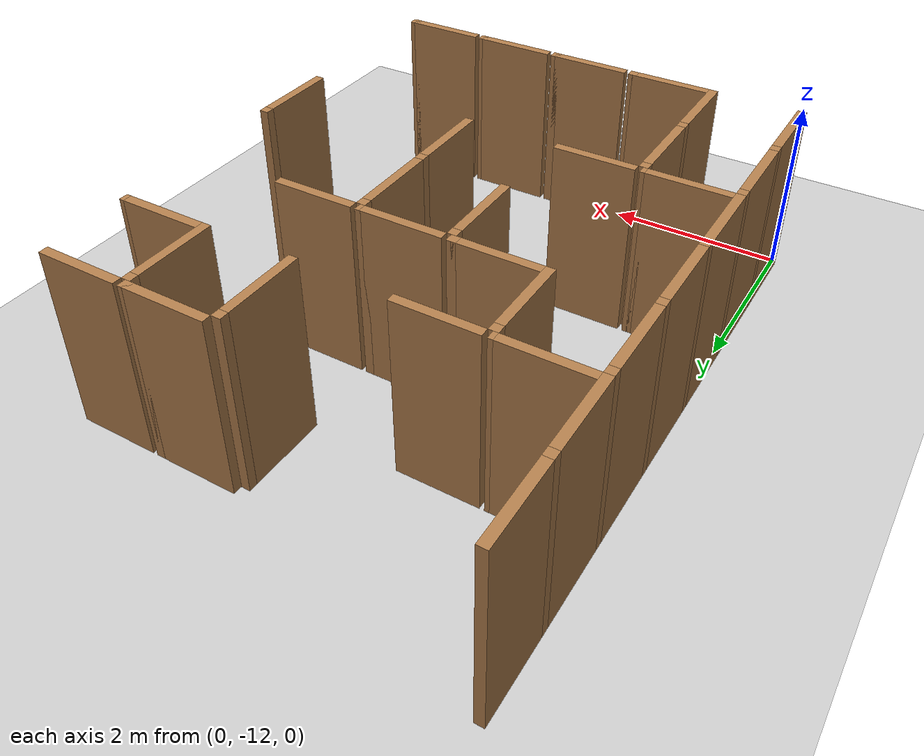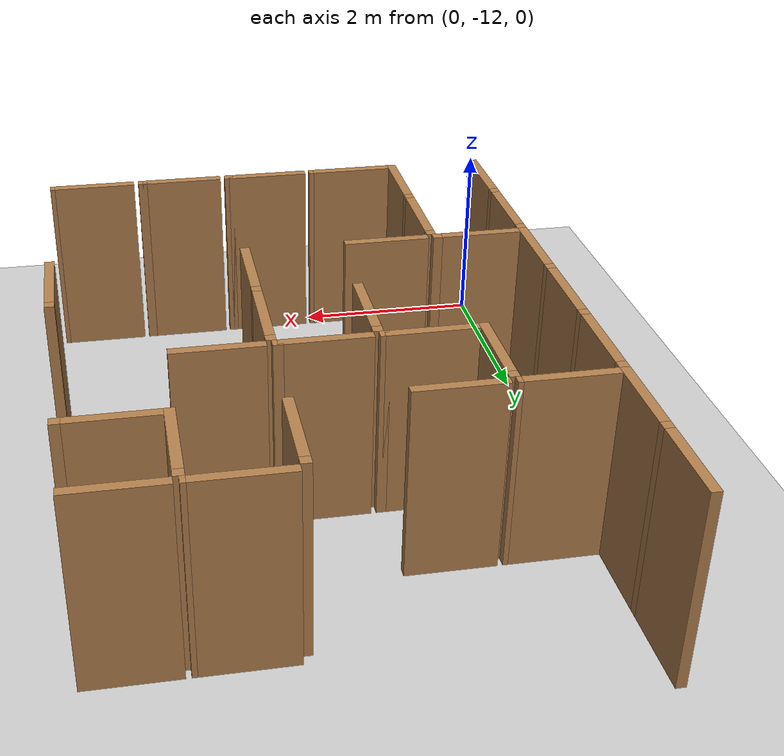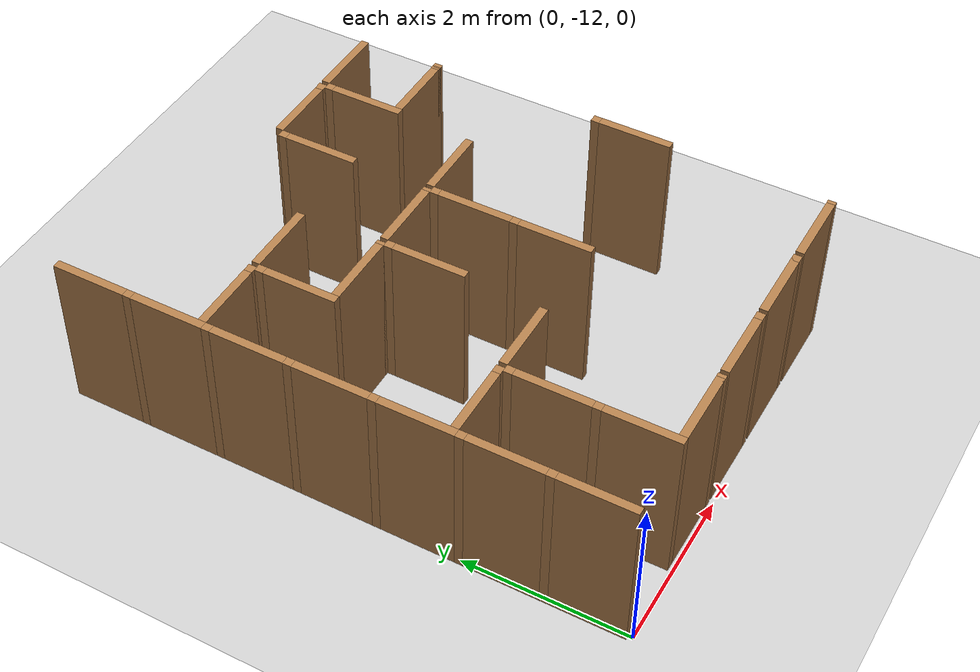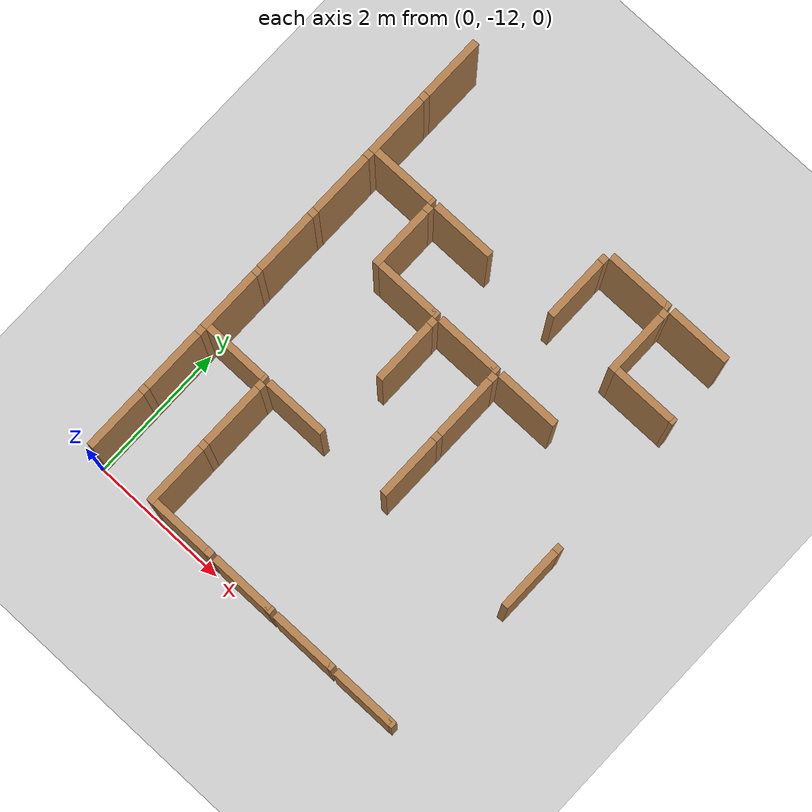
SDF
<sdf version="1.6">
 <world name="default">
  <include><uri>model://sun</uri></include>
  <model name="ground_plane">
   <static>true</static>
   <link name="link">
    <collision name="collision"><geometry><plane><size>12.0 12.0</size></plane></geometry></collision>
    <visual name="visual">
     <cast_shadows>false</cast_shadows>
     <geometry><plane><size>12.0 12.0</size></plane></geometry>
     <material>
      <script><uri>file://media/materials/scripts/gazebo.material</uri><name>Gazebo/Grey</name></script>
     </material>
    </visual>
   </link>
   <pose>6.0 -6.0 0 0 0 0</pose>
  </model>
  <model name="vwall_5_0">
   <pose>0.0 -5.5 1.0 0 0 0</pose>
   <link name="link">
    <collision name="collision"><geometry><box><size>0.1 0.9 2</size></box></geometry></collision>
    <visual name="visual">
     <geometry><box><size>0.1 0.9 2</size></box></geometry>
     <material>
      <script><uri>file://media/materials/scripts/gazebo.material</uri><name>Gazebo/Wood</name></script>
     </material>
    </visual>
   </link>
  </model>
  <model name="vwall_6_0">
   <pose>0.0 -6.5 1.0 0 0 0</pose>
   <link name="link">
    <collision name="collision"><geometry><box><size>0.1 0.9 2</size></box></geometry></collision>
    <visual name="visual">
     <geometry><box><size>0.1 0.9 2</size></box></geometry>
     <material>
      <script><uri>file://media/materials/scripts/gazebo.material</uri><name>Gazebo/Wood</name></script>
     </material>
    </visual>
   </link>
  </model>
  <model name="joint_0.0_-6.0">
   <pose>0.0 -6.0 1.0 0 0 0</pose>
   <link name="link">
    <collision name="collision"><geometry><box><size>0.1 0.1 2</size></box></geometry></collision>
    <visual name="visual">
     <geometry><box><size>0.1 0.1 2</size></box></geometry>
     <material>
      <script><uri>file://media/materials/scripts/gazebo.material</uri><name>Gazebo/Wood</name></script>
     </material>
    </visual>
   </link>
  </model>
  <model name="vwall_6_3">
   <pose>3.0 -6.5 1.0 0 0 0</pose>
   <link name="link">
    <collision name="collision"><geometry><box><size>0.1 0.9 2</size></box></geometry></collision>
    <visual name="visual">
     <geometry><box><size>0.1 0.9 2</size></box></geometry>
     <material>
      <script><uri>file://media/materials/scripts/gazebo.material</uri><name>Gazebo/Wood</name></script>
     </material>
    </visual>
   </link>
  </model>
  <model name="joint_3.0_-6.0">
   <pose>3.0 -6.0 1.0 0 0 0</pose>
   <link name="link">
    <collision name="collision"><geometry><box><size>0.1 0.1 2</size></box></geometry></collision>
    <visual name="visual">
     <geometry><box><size>0.1 0.1 2</size></box></geometry>
     <material>
      <script><uri>file://media/materials/scripts/gazebo.material</uri><name>Gazebo/Wood</name></script>
     </material>
    </visual>
   </link>
  </model>
  <model name="vwall_6_4">
   <pose>4.0 -6.5 1.0 0 0 0</pose>
   <link name="link">
    <collision name="collision"><geometry><box><size>0.1 0.9 2</size></box></geometry></collision>
    <visual name="visual">
     <geometry><box><size>0.1 0.9 2</size></box></geometry>
     <material>
      <script><uri>file://media/materials/scripts/gazebo.material</uri><name>Gazebo/Wood</name></script>
     </material>
    </visual>
   </link>
  </model>
  <model name="joint_4.0_-6.0">
   <pose>4.0 -6.0 1.0 0 0 0</pose>
   <link name="link">
    <collision name="collision"><geometry><box><size>0.1 0.1 2</size></box></geometry></collision>
    <visual name="visual">
     <geometry><box><size>0.1 0.1 2</size></box></geometry>
     <material>
      <script><uri>file://media/materials/scripts/gazebo.material</uri><name>Gazebo/Wood</name></script>
     </material>
    </visual>
   </link>
  </model>
  <model name="vwall_7_0">
   <pose>0.0 -7.5 1.0 0 0 0</pose>
   <link name="link">
    <collision name="collision"><geometry><box><size>0.1 0.9 2</size></box></geometry></collision>
    <visual name="visual">
     <geometry><box><size>0.1 0.9 2</size></box></geometry>
     <material>
      <script><uri>file://media/materials/scripts/gazebo.material</uri><name>Gazebo/Wood</name></script>
     </material>
    </visual>
   </link>
  </model>
  <model name="joint_0.0_-7.0">
   <pose>0.0 -7.0 1.0 0 0 0</pose>
   <link name="link">
    <collision name="collision"><geometry><box><size>0.1 0.1 2</size></box></geometry></collision>
    <visual name="visual">
     <geometry><box><size>0.1 0.1 2</size></box></geometry>
     <material>
      <script><uri>file://media/materials/scripts/gazebo.material</uri><name>Gazebo/Wood</name></script>
     </material>
    </visual>
   </link>
  </model>
  <model name="vwall_7_1">
   <pose>1.0 -7.5 1.0 0 0 0</pose>
   <link name="link">
    <collision name="collision"><geometry><box><size>0.1 0.9 2</size></box></geometry></collision>
    <visual name="visual">
     <geometry><box><size>0.1 0.9 2</size></box></geometry>
     <material>
      <script><uri>file://media/materials/scripts/gazebo.material</uri><name>Gazebo/Wood</name></script>
     </material>
    </visual>
   </link>
  </model>
  <model name="joint_1.0_-7.0">
   <pose>1.0 -7.0 1.0 0 0 0</pose>
   <link name="link">
    <collision name="collision"><geometry><box><size>0.1 0.1 2</size></box></geometry></collision>
    <visual name="visual">
     <geometry><box><size>0.1 0.1 2</size></box></geometry>
     <material>
      <script><uri>file://media/materials/scripts/gazebo.material</uri><name>Gazebo/Wood</name></script>
     </material>
    </visual>
   </link>
  </model>
  <model name="vwall_8_0">
   <pose>0.0 -8.5 1.0 0 0 0</pose>
   <link name="link">
    <collision name="collision"><geometry><box><size>0.1 0.9 2</size></box></geometry></collision>
    <visual name="visual">
     <geometry><box><size>0.1 0.9 2</size></box></geometry>
     <material>
      <script><uri>file://media/materials/scripts/gazebo.material</uri><name>Gazebo/Wood</name></script>
     </material>
    </visual>
   </link>
  </model>
  <model name="joint_0.0_-8.0">
   <pose>0.0 -8.0 1.0 0 0 0</pose>
   <link name="link">
    <collision name="collision"><geometry><box><size>0.1 0.1 2</size></box></geometry></collision>
    <visual name="visual">
     <geometry><box><size>0.1 0.1 2</size></box></geometry>
     <material>
      <script><uri>file://media/materials/scripts/gazebo.material</uri><name>Gazebo/Wood</name></script>
     </material>
    </visual>
   </link>
  </model>
  <model name="vwall_8_2">
   <pose>2.0 -8.5 1.0 0 0 0</pose>
   <link name="link">
    <collision name="collision"><geometry><box><size>0.1 0.9 2</size></box></geometry></collision>
    <visual name="visual">
     <geometry><box><size>0.1 0.9 2</size></box></geometry>
     <material>
      <script><uri>file://media/materials/scripts/gazebo.material</uri><name>Gazebo/Wood</name></script>
     </material>
    </visual>
   </link>
  </model>
  <model name="joint_2.0_-8.0">
   <pose>2.0 -8.0 1.0 0 0 0</pose>
   <link name="link">
    <collision name="collision"><geometry><box><size>0.1 0.1 2</size></box></geometry></collision>
    <visual name="visual">
     <geometry><box><size>0.1 0.1 2</size></box></geometry>
     <material>
      <script><uri>file://media/materials/scripts/gazebo.material</uri><name>Gazebo/Wood</name></script>
     </material>
    </visual>
   </link>
  </model>
  <model name="vwall_8_3">
   <pose>3.0 -8.5 1.0 0 0 0</pose>
   <link name="link">
    <collision name="collision"><geometry><box><size>0.1 0.9 2</size></box></geometry></collision>
    <visual name="visual">
     <geometry><box><size>0.1 0.9 2</size></box></geometry>
     <material>
      <script><uri>file://media/materials/scripts/gazebo.material</uri><name>Gazebo/Wood</name></script>
     </material>
    </visual>
   </link>
  </model>
  <model name="joint_3.0_-8.0">
   <pose>3.0 -8.0 1.0 0 0 0</pose>
   <link name="link">
    <collision name="collision"><geometry><box><size>0.1 0.1 2</size></box></geometry></collision>
    <visual name="visual">
     <geometry><box><size>0.1 0.1 2</size></box></geometry>
     <material>
      <script><uri>file://media/materials/scripts/gazebo.material</uri><name>Gazebo/Wood</name></script>
     </material>
    </visual>
   </link>
  </model>
  <model name="vwall_9_0">
   <pose>0.0 -9.5 1.0 0 0 0</pose>
   <link name="link">
    <collision name="collision"><geometry><box><size>0.1 0.9 2</size></box></geometry></collision>
    <visual name="visual">
     <geometry><box><size>0.1 0.9 2</size></box></geometry>
     <material>
      <script><uri>file://media/materials/scripts/gazebo.material</uri><name>Gazebo/Wood</name></script>
     </material>
    </visual>
   </link>
  </model>
  <model name="joint_0.0_-9.0">
   <pose>0.0 -9.0 1.0 0 0 0</pose>
   <link name="link">
    <collision name="collision"><geometry><box><size>0.1 0.1 2</size></box></geometry></collision>
    <visual name="visual">
     <geometry><box><size>0.1 0.1 2</size></box></geometry>
     <material>
      <script><uri>file://media/materials/scripts/gazebo.material</uri><name>Gazebo/Wood</name></script>
     </material>
    </visual>
   </link>
  </model>
  <model name="vwall_9_3">
   <pose>3.0 -9.5 1.0 0 0 0</pose>
   <link name="link">
    <collision name="collision"><geometry><box><size>0.1 0.9 2</size></box></geometry></collision>
    <visual name="visual">
     <geometry><box><size>0.1 0.9 2</size></box></geometry>
     <material>
      <script><uri>file://media/materials/scripts/gazebo.material</uri><name>Gazebo/Wood</name></script>
     </material>
    </visual>
   </link>
  </model>
  <model name="joint_3.0_-9.0">
   <pose>3.0 -9.0 1.0 0 0 0</pose>
   <link name="link">
    <collision name="collision"><geometry><box><size>0.1 0.1 2</size></box></geometry></collision>
    <visual name="visual">
     <geometry><box><size>0.1 0.1 2</size></box></geometry>
     <material>
      <script><uri>file://media/materials/scripts/gazebo.material</uri><name>Gazebo/Wood</name></script>
     </material>
    </visual>
   </link>
  </model>
  <model name="vwall_9_5">
   <pose>5.0 -9.5 1.0 0 0 0</pose>
   <link name="link">
    <collision name="collision"><geometry><box><size>0.1 0.9 2</size></box></geometry></collision>
    <visual name="visual">
     <geometry><box><size>0.1 0.9 2</size></box></geometry>
     <material>
      <script><uri>file://media/materials/scripts/gazebo.material</uri><name>Gazebo/Wood</name></script>
     </material>
    </visual>
   </link>
  </model>
  <model name="joint_5.0_-9.0">
   <pose>5.0 -9.0 1.0 0 0 0</pose>
   <link name="link">
    <collision name="collision"><geometry><box><size>0.1 0.1 2</size></box></geometry></collision>
    <visual name="visual">
     <geometry><box><size>0.1 0.1 2</size></box></geometry>
     <material>
      <script><uri>file://media/materials/scripts/gazebo.material</uri><name>Gazebo/Wood</name></script>
     </material>
    </visual>
   </link>
  </model>
  <model name="vwall_10_0">
   <pose>0.0 -10.5 1.0 0 0 0</pose>
   <link name="link">
    <collision name="collision"><geometry><box><size>0.1 0.9 2</size></box></geometry></collision>
    <visual name="visual">
     <geometry><box><size>0.1 0.9 2</size></box></geometry>
     <material>
      <script><uri>file://media/materials/scripts/gazebo.material</uri><name>Gazebo/Wood</name></script>
     </material>
    </visual>
   </link>
  </model>
  <model name="joint_0.0_-10.0">
   <pose>0.0 -10.0 1.0 0 0 0</pose>
   <link name="link">
    <collision name="collision"><geometry><box><size>0.1 0.1 2</size></box></geometry></collision>
    <visual name="visual">
     <geometry><box><size>0.1 0.1 2</size></box></geometry>
     <material>
      <script><uri>file://media/materials/scripts/gazebo.material</uri><name>Gazebo/Wood</name></script>
     </material>
    </visual>
   </link>
  </model>
  <model name="vwall_10_1">
   <pose>1.0 -10.5 1.0 0 0 0</pose>
   <link name="link">
    <collision name="collision"><geometry><box><size>0.1 0.9 2</size></box></geometry></collision>
    <visual name="visual">
     <geometry><box><size>0.1 0.9 2</size></box></geometry>
     <material>
      <script><uri>file://media/materials/scripts/gazebo.material</uri><name>Gazebo/Wood</name></script>
     </material>
    </visual>
   </link>
  </model>
  <model name="joint_1.0_-10.0">
   <pose>1.0 -10.0 1.0 0 0 0</pose>
   <link name="link">
    <collision name="collision"><geometry><box><size>0.1 0.1 2</size></box></geometry></collision>
    <visual name="visual">
     <geometry><box><size>0.1 0.1 2</size></box></geometry>
     <material>
      <script><uri>file://media/materials/scripts/gazebo.material</uri><name>Gazebo/Wood</name></script>
     </material>
    </visual>
   </link>
  </model>
  <model name="vwall_11_0">
   <pose>0.0 -11.5 1.0 0 0 0</pose>
   <link name="link">
    <collision name="collision"><geometry><box><size>0.1 0.9 2</size></box></geometry></collision>
    <visual name="visual">
     <geometry><box><size>0.1 0.9 2</size></box></geometry>
     <material>
      <script><uri>file://media/materials/scripts/gazebo.material</uri><name>Gazebo/Wood</name></script>
     </material>
    </visual>
   </link>
  </model>
  <model name="joint_0.0_-11.0">
   <pose>0.0 -11.0 1.0 0 0 0</pose>
   <link name="link">
    <collision name="collision"><geometry><box><size>0.1 0.1 2</size></box></geometry></collision>
    <visual name="visual">
     <geometry><box><size>0.1 0.1 2</size></box></geometry>
     <material>
      <script><uri>file://media/materials/scripts/gazebo.material</uri><name>Gazebo/Wood</name></script>
     </material>
    </visual>
   </link>
  </model>
  <model name="vwall_11_1">
   <pose>1.0 -11.5 1.0 0 0 0</pose>
   <link name="link">
    <collision name="collision"><geometry><box><size>0.1 0.9 2</size></box></geometry></collision>
    <visual name="visual">
     <geometry><box><size>0.1 0.9 2</size></box></geometry>
     <material>
      <script><uri>file://media/materials/scripts/gazebo.material</uri><name>Gazebo/Wood</name></script>
     </material>
    </visual>
   </link>
  </model>
  <model name="joint_1.0_-11.0">
   <pose>1.0 -11.0 1.0 0 0 0</pose>
   <link name="link">
    <collision name="collision"><geometry><box><size>0.1 0.1 2</size></box></geometry></collision>
    <visual name="visual">
     <geometry><box><size>0.1 0.1 2</size></box></geometry>
     <material>
      <script><uri>file://media/materials/scripts/gazebo.material</uri><name>Gazebo/Wood</name></script>
     </material>
    </visual>
   </link>
  </model>
  <model name="hwall_5_3">
   <pose>3.5 -5.9 1.0 0 0 0</pose>
   <link name="link">
    <collision name="collision"><geometry><box><size>0.9 0.1 2</size></box></geometry></collision>
    <visual name="visual">
     <geometry><box><size>0.9 0.1 2</size></box></geometry>
     <material>
      <script><uri>file://media/materials/scripts/gazebo.material</uri><name>Gazebo/Wood</name></script>
     </material>
    </visual>
   </link>
  </model>
  <model name="joint_3.95_-5.9">
   <pose>3.95 -5.9 1.0 0 0 0</pose>
   <link name="link">
    <collision name="collision"><geometry><box><size>0.1 0.1 2</size></box></geometry></collision>
    <visual name="visual">
     <geometry><box><size>0.1 0.1 2</size></box></geometry>
     <material>
      <script><uri>file://media/materials/scripts/gazebo.material</uri><name>Gazebo/Wood</name></script>
     </material>
    </visual>
   </link>
  </model>
  <model name="hwall_5_4">
   <pose>4.5 -5.9 1.0 0 0 0</pose>
   <link name="link">
    <collision name="collision"><geometry><box><size>0.9 0.1 2</size></box></geometry></collision>
    <visual name="visual">
     <geometry><box><size>0.9 0.1 2</size></box></geometry>
     <material>
      <script><uri>file://media/materials/scripts/gazebo.material</uri><name>Gazebo/Wood</name></script>
     </material>
    </visual>
   </link>
  </model>
  <model name="hwall_6_0">
   <pose>0.5 -6.9 1.0 0 0 0</pose>
   <link name="link">
    <collision name="collision"><geometry><box><size>0.9 0.1 2</size></box></geometry></collision>
    <visual name="visual">
     <geometry><box><size>0.9 0.1 2</size></box></geometry>
     <material>
      <script><uri>file://media/materials/scripts/gazebo.material</uri><name>Gazebo/Wood</name></script>
     </material>
    </visual>
   </link>
  </model>
  <model name="joint_0.95_-6.9">
   <pose>0.95 -6.9 1.0 0 0 0</pose>
   <link name="link">
    <collision name="collision"><geometry><box><size>0.1 0.1 2</size></box></geometry></collision>
    <visual name="visual">
     <geometry><box><size>0.1 0.1 2</size></box></geometry>
     <material>
      <script><uri>file://media/materials/scripts/gazebo.material</uri><name>Gazebo/Wood</name></script>
     </material>
    </visual>
   </link>
  </model>
  <model name="hwall_6_1">
   <pose>1.5 -6.9 1.0 0 0 0</pose>
   <link name="link">
    <collision name="collision"><geometry><box><size>0.9 0.1 2</size></box></geometry></collision>
    <visual name="visual">
     <geometry><box><size>0.9 0.1 2</size></box></geometry>
     <material>
      <script><uri>file://media/materials/scripts/gazebo.material</uri><name>Gazebo/Wood</name></script>
     </material>
    </visual>
   </link>
  </model>
  <model name="hwall_6_4">
   <pose>4.5 -6.9 1.0 0 0 0</pose>
   <link name="link">
    <collision name="collision"><geometry><box><size>0.9 0.1 2</size></box></geometry></collision>
    <visual name="visual">
     <geometry><box><size>0.9 0.1 2</size></box></geometry>
     <material>
      <script><uri>file://media/materials/scripts/gazebo.material</uri><name>Gazebo/Wood</name></script>
     </material>
    </visual>
   </link>
  </model>
  <model name="joint_4.95_-6.9">
   <pose>4.95 -6.9 1.0 0 0 0</pose>
   <link name="link">
    <collision name="collision"><geometry><box><size>0.1 0.1 2</size></box></geometry></collision>
    <visual name="visual">
     <geometry><box><size>0.1 0.1 2</size></box></geometry>
     <material>
      <script><uri>file://media/materials/scripts/gazebo.material</uri><name>Gazebo/Wood</name></script>
     </material>
    </visual>
   </link>
  </model>
  <model name="hwall_7_1">
   <pose>1.5 -7.9 1.0 0 0 0</pose>
   <link name="link">
    <collision name="collision"><geometry><box><size>0.9 0.1 2</size></box></geometry></collision>
    <visual name="visual">
     <geometry><box><size>0.9 0.1 2</size></box></geometry>
     <material>
      <script><uri>file://media/materials/scripts/gazebo.material</uri><name>Gazebo/Wood</name></script>
     </material>
    </visual>
   </link>
  </model>
  <model name="joint_1.95_-7.9">
   <pose>1.95 -7.9 1.0 0 0 0</pose>
   <link name="link">
    <collision name="collision"><geometry><box><size>0.1 0.1 2</size></box></geometry></collision>
    <visual name="visual">
     <geometry><box><size>0.1 0.1 2</size></box></geometry>
     <material>
      <script><uri>file://media/materials/scripts/gazebo.material</uri><name>Gazebo/Wood</name></script>
     </material>
    </visual>
   </link>
  </model>
  <model name="hwall_7_2">
   <pose>2.5 -7.9 1.0 0 0 0</pose>
   <link name="link">
    <collision name="collision"><geometry><box><size>0.9 0.1 2</size></box></geometry></collision>
    <visual name="visual">
     <geometry><box><size>0.9 0.1 2</size></box></geometry>
     <material>
      <script><uri>file://media/materials/scripts/gazebo.material</uri><name>Gazebo/Wood</name></script>
     </material>
    </visual>
   </link>
  </model>
  <model name="joint_2.95_-7.9">
   <pose>2.95 -7.9 1.0 0 0 0</pose>
   <link name="link">
    <collision name="collision"><geometry><box><size>0.1 0.1 2</size></box></geometry></collision>
    <visual name="visual">
     <geometry><box><size>0.1 0.1 2</size></box></geometry>
     <material>
      <script><uri>file://media/materials/scripts/gazebo.material</uri><name>Gazebo/Wood</name></script>
     </material>
    </visual>
   </link>
  </model>
  <model name="hwall_7_3">
   <pose>3.5 -7.9 1.0 0 0 0</pose>
   <link name="link">
    <collision name="collision"><geometry><box><size>0.9 0.1 2</size></box></geometry></collision>
    <visual name="visual">
     <geometry><box><size>0.9 0.1 2</size></box></geometry>
     <material>
      <script><uri>file://media/materials/scripts/gazebo.material</uri><name>Gazebo/Wood</name></script>
     </material>
    </visual>
   </link>
  </model>
  <model name="hwall_9_0">
   <pose>0.5 -9.9 1.0 0 0 0</pose>
   <link name="link">
    <collision name="collision"><geometry><box><size>0.9 0.1 2</size></box></geometry></collision>
    <visual name="visual">
     <geometry><box><size>0.9 0.1 2</size></box></geometry>
     <material>
      <script><uri>file://media/materials/scripts/gazebo.material</uri><name>Gazebo/Wood</name></script>
     </material>
    </visual>
   </link>
  </model>
  <model name="joint_0.95_-9.9">
   <pose>0.95 -9.9 1.0 0 0 0</pose>
   <link name="link">
    <collision name="collision"><geometry><box><size>0.1 0.1 2</size></box></geometry></collision>
    <visual name="visual">
     <geometry><box><size>0.1 0.1 2</size></box></geometry>
     <material>
      <script><uri>file://media/materials/scripts/gazebo.material</uri><name>Gazebo/Wood</name></script>
     </material>
    </visual>
   </link>
  </model>
  <model name="hwall_9_1">
   <pose>1.5 -9.9 1.0 0 0 0</pose>
   <link name="link">
    <collision name="collision"><geometry><box><size>0.9 0.1 2</size></box></geometry></collision>
    <visual name="visual">
     <geometry><box><size>0.9 0.1 2</size></box></geometry>
     <material>
      <script><uri>file://media/materials/scripts/gazebo.material</uri><name>Gazebo/Wood</name></script>
     </material>
    </visual>
   </link>
  </model>
  <model name="hwall_11_1">
   <pose>1.5 -11.9 1.0 0 0 0</pose>
   <link name="link">
    <collision name="collision"><geometry><box><size>0.9 0.1 2</size></box></geometry></collision>
    <visual name="visual">
     <geometry><box><size>0.9 0.1 2</size></box></geometry>
     <material>
      <script><uri>file://media/materials/scripts/gazebo.material</uri><name>Gazebo/Wood</name></script>
     </material>
    </visual>
   </link>
  </model>
  <model name="joint_1.95_-11.9">
   <pose>1.95 -11.9 1.0 0 0 0</pose>
   <link name="link">
    <collision name="collision"><geometry><box><size>0.1 0.1 2</size></box></geometry></collision>
    <visual name="visual">
     <geometry><box><size>0.1 0.1 2</size></box></geometry>
     <material>
      <script><uri>file://media/materials/scripts/gazebo.material</uri><name>Gazebo/Wood</name></script>
     </material>
    </visual>
   </link>
  </model>
  <model name="hwall_11_2">
   <pose>2.5 -11.9 1.0 0 0 0</pose>
   <link name="link">
    <collision name="collision"><geometry><box><size>0.9 0.1 2</size></box></geometry></collision>
    <visual name="visual">
     <geometry><box><size>0.9 0.1 2</size></box></geometry>
     <material>
      <script><uri>file://media/materials/scripts/gazebo.material</uri><name>Gazebo/Wood</name></script>
     </material>
    </visual>
   </link>
  </model>
  <model name="joint_2.95_-11.9">
   <pose>2.95 -11.9 1.0 0 0 0</pose>
   <link name="link">
    <collision name="collision"><geometry><box><size>0.1 0.1 2</size></box></geometry></collision>
    <visual name="visual">
     <geometry><box><size>0.1 0.1 2</size></box></geometry>
     <material>
      <script><uri>file://media/materials/scripts/gazebo.material</uri><name>Gazebo/Wood</name></script>
     </material>
    </visual>
   </link>
  </model>
  <model name="hwall_11_3">
   <pose>3.5 -11.9 1.0 0 0 0</pose>
   <link name="link">
    <collision name="collision"><geometry><box><size>0.9 0.1 2</size></box></geometry></collision>
    <visual name="visual">
     <geometry><box><size>0.9 0.1 2</size></box></geometry>
     <material>
      <script><uri>file://media/materials/scripts/gazebo.material</uri><name>Gazebo/Wood</name></script>
     </material>
    </visual>
   </link>
  </model>
  <model name="joint_3.95_-11.9">
   <pose>3.95 -11.9 1.0 0 0 0</pose>
   <link name="link">
    <collision name="collision"><geometry><box><size>0.1 0.1 2</size></box></geometry></collision>
    <visual name="visual">
     <geometry><box><size>0.1 0.1 2</size></box></geometry>
     <material>
      <script><uri>file://media/materials/scripts/gazebo.material</uri><name>Gazebo/Wood</name></script>
     </material>
    </visual>
   </link>
  </model>
  <model name="hwall_11_4">
   <pose>4.5 -11.9 1.0 0 0 0</pose>
   <link name="link">
    <collision name="collision"><geometry><box><size>0.9 0.1 2</size></box></geometry></collision>
    <visual name="visual">
     <geometry><box><size>0.9 0.1 2</size></box></geometry>
     <material>
      <script><uri>file://media/materials/scripts/gazebo.material</uri><name>Gazebo/Wood</name></script>
     </material>
    </visual>
   </link>
  </model>
  <model name="joint_4.95_-11.9">
   <pose>4.95 -11.9 1.0 0 0 0</pose>
   <link name="link">
    <collision name="collision"><geometry><box><size>0.1 0.1 2</size></box></geometry></collision>
    <visual name="visual">
     <geometry><box><size>0.1 0.1 2</size></box></geometry>
     <material>
      <script><uri>file://media/materials/scripts/gazebo.material</uri><name>Gazebo/Wood</name></script>
     </material>
    </visual>
   </link>
  </model>
 </world>
</sdf>
